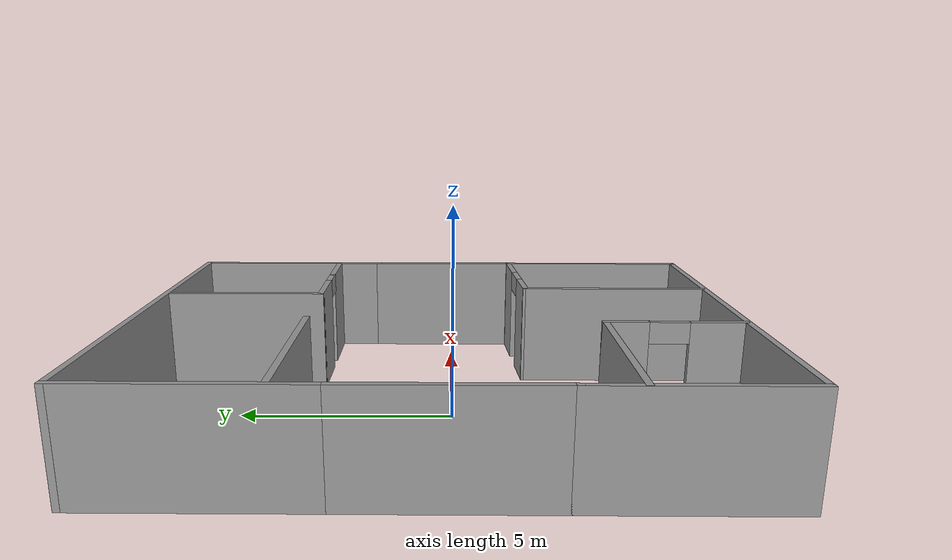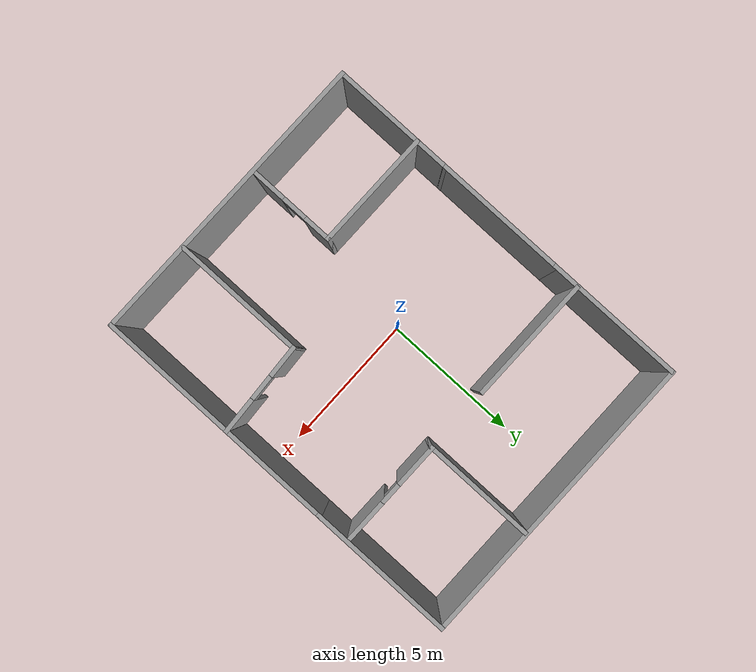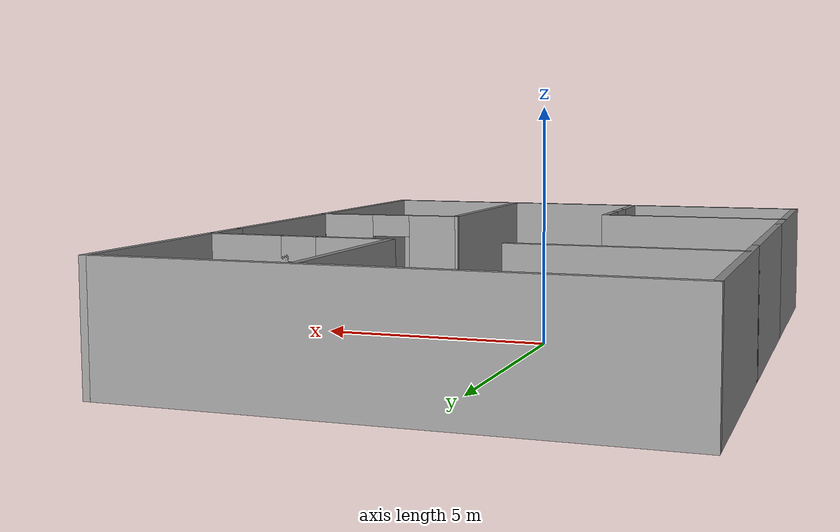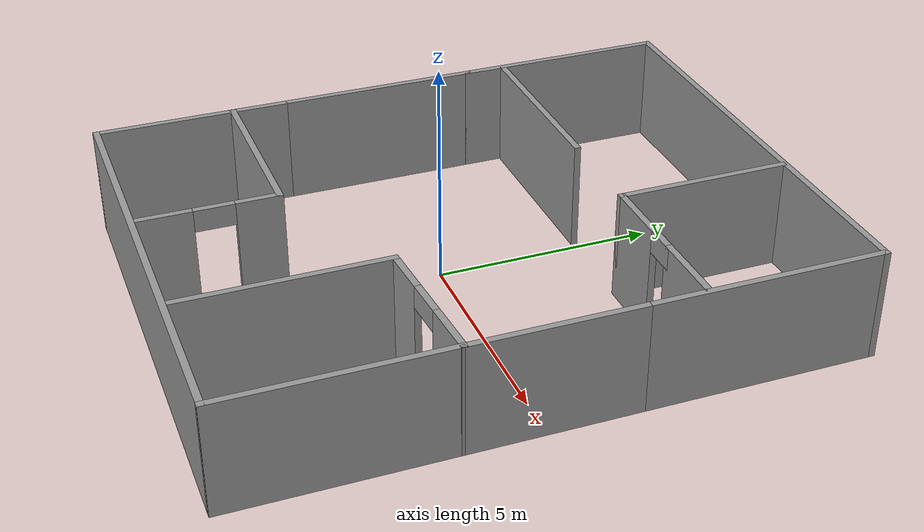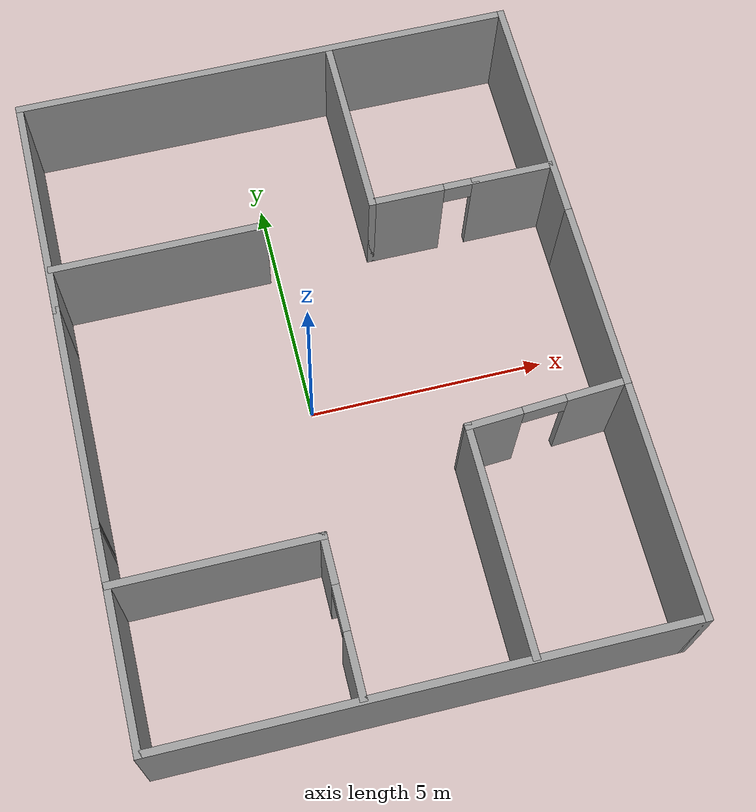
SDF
<?xml version='1.0'?>
<sdf version='1.7'>
  <model name='Map1'>
    <pose>0.662326 0.35 0 0 -0 0</pose>
    <link name='Wall_36'>
      <collision name='Wall_36_Collision'>
        <geometry>
          <box>
            <size>4.5 0.15 2.5</size>
          </box>
        </geometry>
        <pose>0 0 1.25 0 -0 0</pose>
      </collision>
      <visual name='Wall_36_Visual'>
        <pose>0 0 1.25 0 -0 0</pose>
        <geometry>
          <box>
            <size>4.5 0.15 2.5</size>
          </box>
        </geometry>
        <material>
          <script>
            <uri>file://media/materials/scripts/gazebo.material</uri>
            <name>Gazebo/Grey</name>
          </script>
          <ambient>1 1 1 1</ambient>
        </material>
        <meta>
          <layer>0</layer>
        </meta>
      </visual>
      <pose>-5.30233 -4.725 0 0 -0 -1.5708</pose>
    </link>
    <link name='Wall_37'>
      <collision name='Wall_37_Collision'>
        <geometry>
          <box>
            <size>10.75 0.15 2.5</size>
          </box>
        </geometry>
        <pose>0 0 1.25 0 -0 0</pose>
      </collision>
      <visual name='Wall_37_Visual'>
        <pose>0 0 1.25 0 -0 0</pose>
        <geometry>
          <box>
            <size>10.75 0.15 2.5</size>
          </box>
        </geometry>
        <material>
          <script>
            <uri>file://media/materials/scripts/gazebo.material</uri>
            <name>Gazebo/Grey</name>
          </script>
          <ambient>1 1 1 1</ambient>
        </material>
        <meta>
          <layer>0</layer>
        </meta>
      </visual>
      <pose>-0.002326 -6.9 0 0 -0 0</pose>
    </link>
    <link name='Wall_38'>
      <collision name='Wall_38_Collision'>
        <geometry>
          <box>
            <size>5 0.15 2.5</size>
          </box>
        </geometry>
        <pose>0 0 1.25 0 -0 0</pose>
      </collision>
      <visual name='Wall_38_Visual'>
        <pose>0 0 1.25 0 -0 0</pose>
        <geometry>
          <box>
            <size>5 0.15 2.5</size>
          </box>
        </geometry>
        <material>
          <script>
            <uri>file://media/materials/scripts/gazebo.material</uri>
            <name>Gazebo/Grey</name>
          </script>
          <ambient>1 1 1 1</ambient>
        </material>
        <meta>
          <layer>0</layer>
        </meta>
      </visual>
      <pose>5.29767 -4.475 0 0 -0 1.5708</pose>
    </link>
    <link name='Wall_40'>
      <collision name='Wall_40_Collision'>
        <geometry>
          <box>
            <size>4.75 0.15 2.5</size>
          </box>
        </geometry>
        <pose>0 0 1.25 0 -0 0</pose>
      </collision>
      <visual name='Wall_40_Visual'>
        <pose>0 0 1.25 0 -0 0</pose>
        <geometry>
          <box>
            <size>4.75 0.15 2.5</size>
          </box>
        </geometry>
        <material>
          <script>
            <uri>file://media/materials/scripts/gazebo.material</uri>
            <name>Gazebo/Grey</name>
          </script>
          <ambient>1 1 1 1</ambient>
        </material>
        <meta>
          <layer>0</layer>
        </meta>
      </visual>
      <pose>-5.30233 -0.25 0 0 -0 1.5708</pose>
    </link>
    <link name='Wall_42'>
      <collision name='Wall_42_Collision'>
        <geometry>
          <box>
            <size>4 0.15 2.5</size>
          </box>
        </geometry>
        <pose>0 0 1.25 0 -0 0</pose>
      </collision>
      <visual name='Wall_42_Visual'>
        <pose>0 0 1.25 0 -0 0</pose>
        <geometry>
          <box>
            <size>4 0.15 2.5</size>
          </box>
        </geometry>
        <material>
          <script>
            <uri>file://media/materials/scripts/gazebo.material</uri>
            <name>Gazebo/Grey</name>
          </script>
          <ambient>1 1 1 1</ambient>
        </material>
        <meta>
          <layer>0</layer>
        </meta>
      </visual>
      <pose>5.29767 -0.125 0 0 -0 1.5708</pose>
    </link>
    <link name='Wall_44'>
      <collision name='Wall_44_Collision'>
        <geometry>
          <box>
            <size>5.25 0.15 2.5</size>
          </box>
        </geometry>
        <pose>0 0 1.25 0 -0 0</pose>
      </collision>
      <visual name='Wall_44_Visual'>
        <pose>0 0 1.25 0 -0 0</pose>
        <geometry>
          <box>
            <size>5.25 0.15 2.5</size>
          </box>
        </geometry>
        <material>
          <script>
            <uri>file://media/materials/scripts/gazebo.material</uri>
            <name>Gazebo/Grey</name>
          </script>
          <ambient>1 1 1 1</ambient>
        </material>
        <meta>
          <layer>0</layer>
        </meta>
      </visual>
      <pose>5.29767 4.35 0 0 -0 1.5708</pose>
    </link>
    <link name='Wall_45'>
      <collision name='Wall_45_Collision'>
        <geometry>
          <box>
            <size>10.75 0.15 2.5</size>
          </box>
        </geometry>
        <pose>0 0 1.25 0 -0 0</pose>
      </collision>
      <visual name='Wall_45_Visual'>
        <pose>0 0 1.25 0 -0 0</pose>
        <geometry>
          <box>
            <size>10.75 0.15 2.5</size>
          </box>
        </geometry>
        <material>
          <script>
            <uri>file://media/materials/scripts/gazebo.material</uri>
            <name>Gazebo/Grey</name>
          </script>
          <ambient>1 1 1 1</ambient>
        </material>
        <meta>
          <layer>0</layer>
        </meta>
      </visual>
      <pose>-0.002326 6.9 0 0 -0 3.14159</pose>
    </link>
    <link name='Wall_46'>
      <collision name='Wall_46_Collision'>
        <geometry>
          <box>
            <size>5 0.15 2.5</size>
          </box>
        </geometry>
        <pose>0 0 1.25 0 -0 0</pose>
      </collision>
      <visual name='Wall_46_Visual'>
        <pose>0 0 1.25 0 -0 0</pose>
        <geometry>
          <box>
            <size>5 0.15 2.5</size>
          </box>
        </geometry>
        <material>
          <script>
            <uri>file://media/materials/scripts/gazebo.material</uri>
            <name>Gazebo/Grey</name>
          </script>
          <ambient>1 1 1 1</ambient>
        </material>
        <meta>
          <layer>0</layer>
        </meta>
      </visual>
      <pose>-5.30233 4.475 0 0 -0 -1.5708</pose>
    </link>
    <link name='Wall_48'>
      <collision name='Wall_48_Collision'>
        <geometry>
          <box>
            <size>4 0.15 2.5</size>
          </box>
        </geometry>
        <pose>0 0 1.25 0 -0 0</pose>
      </collision>
      <visual name='Wall_48_Visual'>
        <pose>0 0 1.25 0 -0 0</pose>
        <geometry>
          <box>
            <size>4 0.15 2.5</size>
          </box>
        </geometry>
        <material>
          <script>
            <uri>file://media/materials/scripts/gazebo.material</uri>
            <name>Gazebo/Grey</name>
          </script>
          <ambient>1 1 1 1</ambient>
        </material>
        <meta>
          <layer>0</layer>
        </meta>
      </visual>
      <pose>1.41767 4.905 0 0 -0 -1.5708</pose>
    </link>
    <link name='Wall_49'>
      <pose>2.51767 2.98 0 0 -0 0</pose>
      <visual name='Wall_49_Visual_0'>
        <pose>-0.3725 0 1.25 0 -0 0</pose>
        <geometry>
          <box>
            <size>1.605 0.15 2.5</size>
          </box>
        </geometry>
        <material>
          <script>
            <uri>file://media/materials/scripts/gazebo.material</uri>
            <name>Gazebo/Grey</name>
          </script>
          <ambient>1 1 1 1</ambient>
        </material>
        <meta>
          <layer>0</layer>
        </meta>
      </visual>
      <collision name='Wall_49_Collision_0'>
        <geometry>
          <box>
            <size>1.605 0.15 2.5</size>
          </box>
        </geometry>
        <pose>-0.3725 0 1.25 0 -0 0</pose>
      </collision>
      <visual name='Wall_49_Visual_1'>
        <pose>0.8025 0 2.25 0 -0 0</pose>
        <geometry>
          <box>
            <size>0.745 0.15 0.5</size>
          </box>
        </geometry>
        <material>
          <script>
            <uri>file://media/materials/scripts/gazebo.material</uri>
            <name>Gazebo/Grey</name>
          </script>
          <ambient>1 1 1 1</ambient>
        </material>
        <meta>
          <layer>0</layer>
        </meta>
      </visual>
      <collision name='Wall_49_Collision_1'>
        <geometry>
          <box>
            <size>0.745 0.15 0.5</size>
          </box>
        </geometry>
        <pose>0.8025 0 2.25 0 -0 0</pose>
      </collision>
    </link>
    <link name='Wall_51'>
      <collision name='Wall_51_Collision'>
        <geometry>
          <box>
            <size>1.75 0.15 2.5</size>
          </box>
        </geometry>
        <pose>0 0 1.25 0 -0 0</pose>
      </collision>
      <visual name='Wall_51_Visual'>
        <pose>0 0 1.25 0 -0 0</pose>
        <geometry>
          <box>
            <size>1.75 0.15 2.5</size>
          </box>
        </geometry>
        <material>
          <script>
            <uri>file://media/materials/scripts/gazebo.material</uri>
            <name>Gazebo/Grey</name>
          </script>
          <ambient>1 1 1 1</ambient>
        </material>
        <meta>
          <layer>0</layer>
        </meta>
      </visual>
      <pose>4.41767 2.98 0 0 -0 0</pose>
    </link>
    <link name='Wall_55'>
      <collision name='Wall_55_Collision'>
        <geometry>
          <box>
            <size>4.5 0.15 2.5</size>
          </box>
        </geometry>
        <pose>0 0 1.25 0 -0 0</pose>
      </collision>
      <visual name='Wall_55_Visual'>
        <pose>0 0 1.25 0 -0 0</pose>
        <geometry>
          <box>
            <size>4.5 0.15 2.5</size>
          </box>
        </geometry>
        <material>
          <script>
            <uri>file://media/materials/scripts/gazebo.material</uri>
            <name>Gazebo/Grey</name>
          </script>
          <ambient>1 1 1 1</ambient>
        </material>
        <meta>
          <layer>0</layer>
        </meta>
      </visual>
      <pose>-3.07733 2.97 0 0 -0 0</pose>
    </link>
    <link name='Wall_57'>
      <collision name='Wall_57_Collision'>
        <geometry>
          <box>
            <size>4.25 0.15 2.5</size>
          </box>
        </geometry>
        <pose>0 0 1.25 0 -0 0</pose>
      </collision>
      <visual name='Wall_57_Visual'>
        <pose>0 0 1.25 0 -0 0</pose>
        <geometry>
          <box>
            <size>4.25 0.15 2.5</size>
          </box>
        </geometry>
        <material>
          <script>
            <uri>file://media/materials/scripts/gazebo.material</uri>
            <name>Gazebo/Grey</name>
          </script>
          <ambient>1 1 1 1</ambient>
        </material>
        <meta>
          <layer>0</layer>
        </meta>
      </visual>
      <pose>-3.24233 -3.75 0 0 -0 0</pose>
    </link>
    <link name='Wall_59'>
      <pose>-1.19233 -5.3 0 0 -0 -1.5708</pose>
      <visual name='Wall_59_Visual_0'>
        <pose>-1.1075 0 1.25 0 -0 0</pose>
        <geometry>
          <box>
            <size>1.035 0.15 2.5</size>
          </box>
        </geometry>
        <material>
          <script>
            <uri>file://media/materials/scripts/gazebo.material</uri>
            <name>Gazebo/Grey</name>
          </script>
          <ambient>1 1 1 1</ambient>
        </material>
        <meta>
          <layer>0</layer>
        </meta>
      </visual>
      <collision name='Wall_59_Collision_0'>
        <geometry>
          <box>
            <size>1.035 0.15 2.5</size>
          </box>
        </geometry>
        <pose>-1.1075 0 1.25 0 -0 0</pose>
      </collision>
      <visual name='Wall_59_Visual_1'>
        <pose>0.9675 0 1.25 0 -0 0</pose>
        <geometry>
          <box>
            <size>1.315 0.15 2.5</size>
          </box>
        </geometry>
        <material>
          <script>
            <uri>file://media/materials/scripts/gazebo.material</uri>
            <name>Gazebo/Grey</name>
          </script>
          <ambient>1 1 1 1</ambient>
        </material>
        <meta>
          <layer>0</layer>
        </meta>
      </visual>
      <collision name='Wall_59_Collision_1'>
        <geometry>
          <box>
            <size>1.315 0.15 2.5</size>
          </box>
        </geometry>
        <pose>0.9675 0 1.25 0 -0 0</pose>
      </collision>
      <visual name='Wall_59_Visual_2'>
        <pose>-0.14 0 2.25 0 -0 0</pose>
        <geometry>
          <box>
            <size>0.9 0.15 0.5</size>
          </box>
        </geometry>
        <material>
          <script>
            <uri>file://media/materials/scripts/gazebo.material</uri>
            <name>Gazebo/Grey</name>
          </script>
          <ambient>1 1 1 1</ambient>
        </material>
        <meta>
          <layer>0</layer>
        </meta>
      </visual>
      <collision name='Wall_59_Collision_2'>
        <geometry>
          <box>
            <size>0.9 0.15 0.5</size>
          </box>
        </geometry>
        <pose>-0.14 0 2.25 0 -0 0</pose>
      </collision>
    </link>
    <link name='Wall_61'>
      <collision name='Wall_61_Collision'>
        <geometry>
          <box>
            <size>4.75 0.15 2.5</size>
          </box>
        </geometry>
        <pose>0 0 1.25 0 -0 0</pose>
      </collision>
      <visual name='Wall_61_Visual'>
        <pose>0 0 1.25 0 -0 0</pose>
        <geometry>
          <box>
            <size>4.75 0.15 2.5</size>
          </box>
        </geometry>
        <material>
          <script>
            <uri>file://media/materials/scripts/gazebo.material</uri>
            <name>Gazebo/Grey</name>
          </script>
          <ambient>1 1 1 1</ambient>
        </material>
        <meta>
          <layer>0</layer>
        </meta>
      </visual>
      <pose>2.02767 -4.56 0 0 -0 1.5708</pose>
    </link>
    <link name='Wall_66'>
      <pose>3.66267 -2.155 0 0 -0 0.064132</pose>
      <visual name='Wall_66_Visual_0'>
        <pose>-1.11702 0 1.25 0 -0 0</pose>
        <geometry>
          <box>
            <size>1.19269 0.15 2.5</size>
          </box>
        </geometry>
        <material>
          <script>
            <uri>file://media/materials/scripts/gazebo.material</uri>
            <name>Gazebo/Grey</name>
          </script>
          <ambient>1 1 1 1</ambient>
        </material>
        <meta>
          <layer>0</layer>
        </meta>
      </visual>
      <collision name='Wall_66_Collision_0'>
        <geometry>
          <box>
            <size>1.19269 0.15 2.5</size>
          </box>
        </geometry>
        <pose>-1.11702 0 1.25 0 -0 0</pose>
      </collision>
      <visual name='Wall_66_Visual_1'>
        <pose>1.04634 0 1.25 0 -0 0</pose>
        <geometry>
          <box>
            <size>1.33405 0.15 2.5</size>
          </box>
        </geometry>
        <material>
          <script>
            <uri>file://media/materials/scripts/gazebo.material</uri>
            <name>Gazebo/Grey</name>
          </script>
          <ambient>1 1 1 1</ambient>
        </material>
        <meta>
          <layer>0</layer>
        </meta>
      </visual>
      <collision name='Wall_66_Collision_1'>
        <geometry>
          <box>
            <size>1.33405 0.15 2.5</size>
          </box>
        </geometry>
        <pose>1.04634 0 1.25 0 -0 0</pose>
      </collision>
      <visual name='Wall_66_Visual_2'>
        <pose>-0.07068 0 2.25 0 -0 0</pose>
        <geometry>
          <box>
            <size>0.9 0.15 0.5</size>
          </box>
        </geometry>
        <material>
          <script>
            <uri>file://media/materials/scripts/gazebo.material</uri>
            <name>Gazebo/Grey</name>
          </script>
          <ambient>1 1 1 1</ambient>
        </material>
        <meta>
          <layer>0</layer>
        </meta>
      </visual>
      <collision name='Wall_66_Collision_2'>
        <geometry>
          <box>
            <size>0.9 0.15 0.5</size>
          </box>
        </geometry>
        <pose>-0.07068 0 2.25 0 -0 0</pose>
      </collision>
    </link>
    <static>1</static>
  </model>
</sdf>
